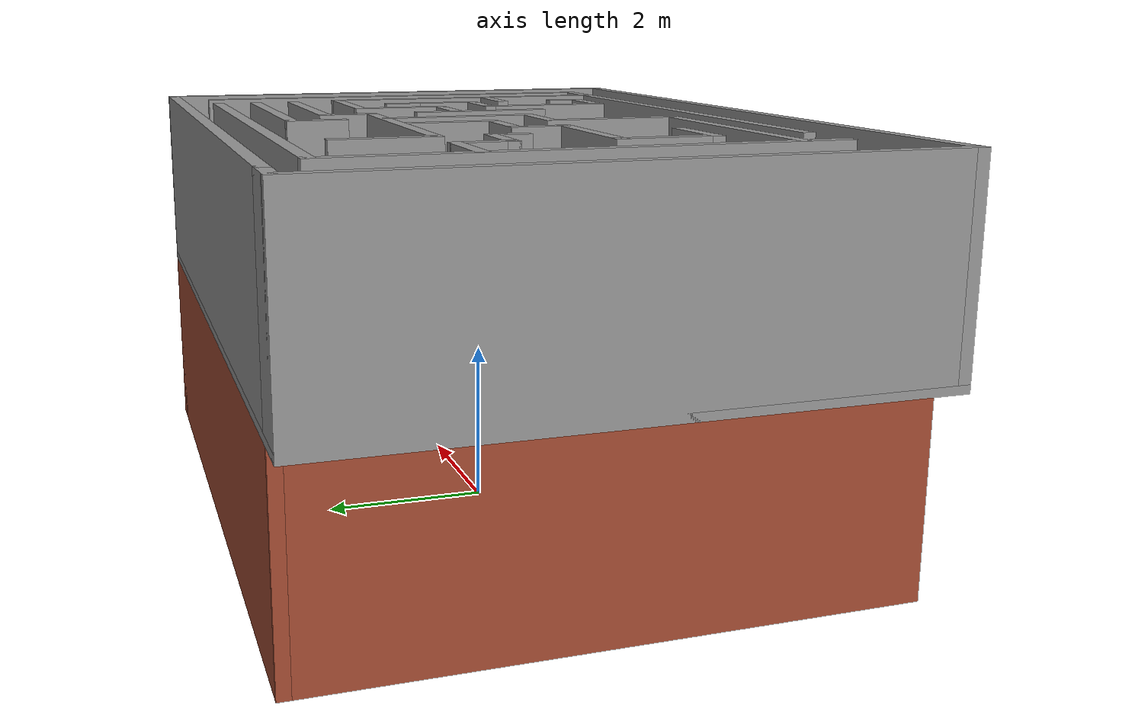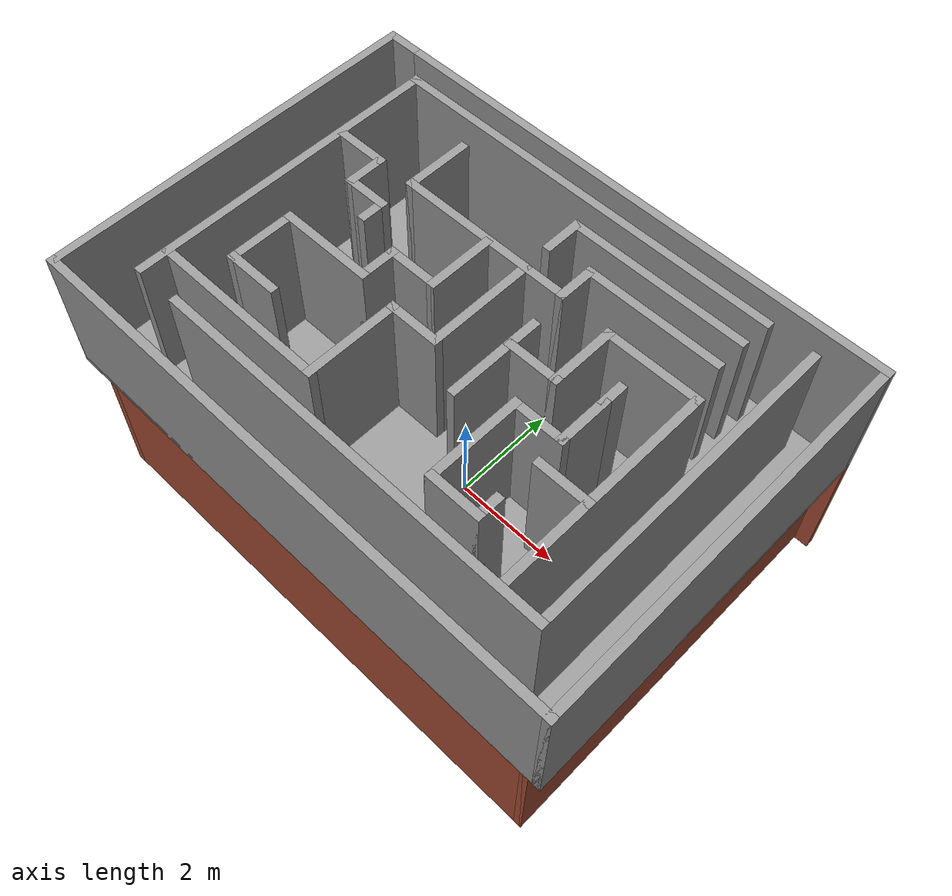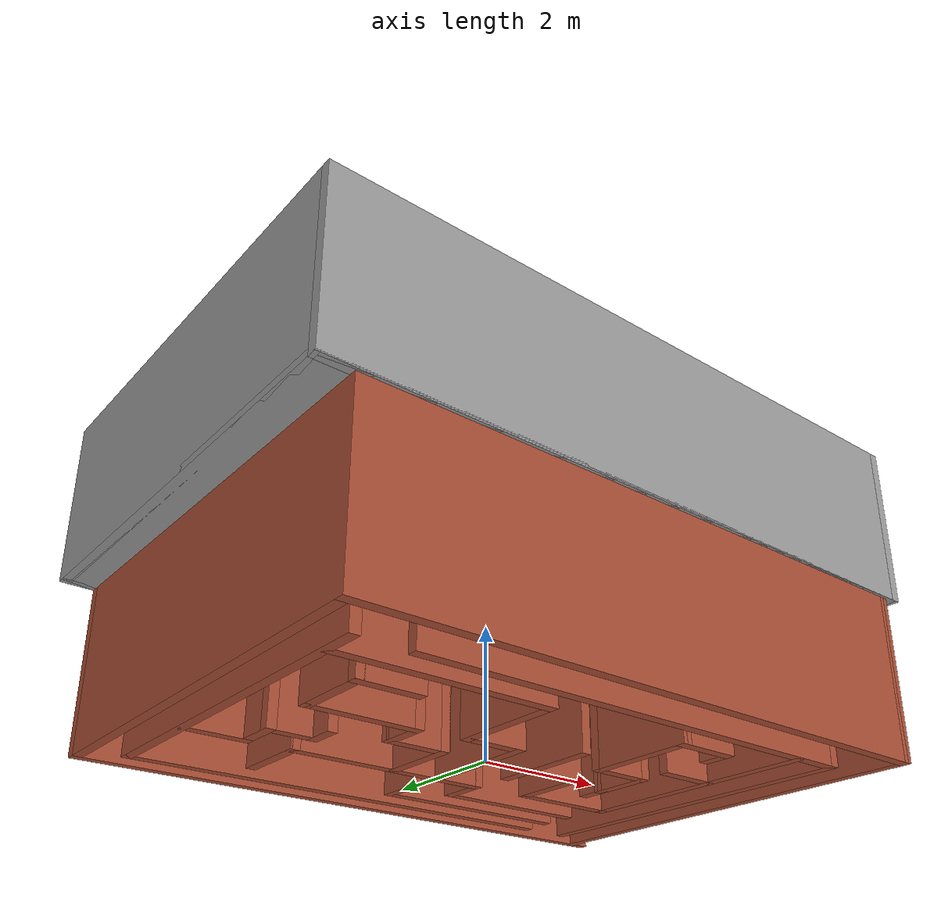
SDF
<?xml version='1.0'?>
<sdf version='1.6'>
  <model name='maze'>
    <pose frame=''>0.181 -0.096 0 0 -0 0</pose>
    <link name='Floor_0'>
      <collision name='Floor_0_Collision'>
        <geometry>
          <box>
            <size>10 7.04626 0.1</size>
          </box>
        </geometry>
        <pose frame=''>0 0 0.05 0 -0 0</pose>
      </collision>
      <visual name='Floor_0_Visual'>
        <pose frame=''>0 0 0.05 0 -0 0</pose>
        <geometry>
          <box>
            <size>10 7.04626 0.1</size>
          </box>
        </geometry>
        <material>
          <script>
            <uri>file://media/materials/scripts/gazebo.material</uri>
            <name>Gazebo/Grey</name>
          </script>
          <ambient>1 1 1 1</ambient>
        </material>
        <meta>
          <layer>1</layer>
        </meta>
      </visual>
      <pose frame=''>-0.250118 -0.02322 2.5 0 -0 0</pose>
    </link>
    <link name='Wall_0'>
      <collision name='Wall_0_Collision'>
        <geometry>
          <box>
            <size>5.75 0.15 2.5</size>
          </box>
        </geometry>
        <pose frame=''>0 0 1.25 0 -0 0</pose>
      </collision>
      <visual name='Wall_0_Visual'>
        <pose frame=''>0 0 1.25 0 -0 0</pose>
        <geometry>
          <box>
            <size>5.75 0.15 2.5</size>
          </box>
        </geometry>
        <material>
          <script>
            <uri>file://media/materials/scripts/gazebo.material</uri>
            <name>Gazebo/Bricks</name>
          </script>
          <ambient>1 1 1 1</ambient>
        </material>
        <meta>
          <layer>0</layer>
        </meta>
      </visual>
      <pose frame=''>-4.128 0.14 0 0 -0 1.5708</pose>
    </link>
    <link name='Wall_1'>
      <collision name='Wall_1_Collision'>
        <geometry>
          <box>
            <size>7.25 0.15 2.5</size>
          </box>
        </geometry>
        <pose frame=''>0 0 1.25 0 -0 0</pose>
      </collision>
      <visual name='Wall_1_Visual'>
        <pose frame=''>0 0 1.25 0 -0 0</pose>
        <geometry>
          <box>
            <size>7.25 0.15 2.5</size>
          </box>
        </geometry>
        <material>
          <script>
            <uri>file://media/materials/scripts/gazebo.material</uri>
            <name>Gazebo/Bricks</name>
          </script>
          <ambient>1 1 1 1</ambient>
        </material>
        <meta>
          <layer>0</layer>
        </meta>
      </visual>
      <pose frame=''>-0.578 2.94 0 0 -0 0</pose>
    </link>
    <link name='Wall_100'>
      <collision name='Wall_100_Collision'>
        <geometry>
          <box>
            <size>0.75 0.15 2.5</size>
          </box>
        </geometry>
        <pose frame=''>0 0 1.25 0 -0 0</pose>
      </collision>
      <visual name='Wall_100_Visual'>
        <pose frame=''>0 0 1.25 0 -0 0</pose>
        <geometry>
          <box>
            <size>0.75 0.15 2.5</size>
          </box>
        </geometry>
        <material>
          <script>
            <uri>file://media/materials/scripts/gazebo.material</uri>
            <name>Gazebo/Grey</name>
          </script>
          <ambient>1 1 1 1</ambient>
        </material>
        <meta>
          <layer>1</layer>
        </meta>
      </visual>
      <pose frame=''>-1.75019 -0.165166 2.5 0 -0 1.5708</pose>
    </link>
    <link name='Wall_101'>
      <collision name='Wall_101_Collision'>
        <geometry>
          <box>
            <size>1 0.15 2.5</size>
          </box>
        </geometry>
        <pose frame=''>0 0 1.25 0 -0 0</pose>
      </collision>
      <visual name='Wall_101_Visual'>
        <pose frame=''>0 0 1.25 0 -0 0</pose>
        <geometry>
          <box>
            <size>1 0.15 2.5</size>
          </box>
        </geometry>
        <material>
          <script>
            <uri>file://media/materials/scripts/gazebo.material</uri>
            <name>Gazebo/Grey</name>
          </script>
          <ambient>1 1 1 1</ambient>
        </material>
        <meta>
          <layer>1</layer>
        </meta>
      </visual>
      <pose frame=''>-1.32519 0.134834 2.5 0 -0 0</pose>
    </link>
    <link name='Wall_102'>
      <collision name='Wall_102_Collision'>
        <geometry>
          <box>
            <size>1.25 0.15 2.5</size>
          </box>
        </geometry>
        <pose frame=''>0 0 1.25 0 -0 0</pose>
      </collision>
      <visual name='Wall_102_Visual'>
        <pose frame=''>0 0 1.25 0 -0 0</pose>
        <geometry>
          <box>
            <size>1.25 0.15 2.5</size>
          </box>
        </geometry>
        <material>
          <script>
            <uri>file://media/materials/scripts/gazebo.material</uri>
            <name>Gazebo/Grey</name>
          </script>
          <ambient>1 1 1 1</ambient>
        </material>
        <meta>
          <layer>1</layer>
        </meta>
      </visual>
      <pose frame=''>-0.900192 0.684834 2.5 0 -0 1.5708</pose>
    </link>
    <link name='Wall_103'>
      <collision name='Wall_103_Collision'>
        <geometry>
          <box>
            <size>1.75 0.15 2.5</size>
          </box>
        </geometry>
        <pose frame=''>0 0 1.25 0 -0 0</pose>
      </collision>
      <visual name='Wall_103_Visual'>
        <pose frame=''>0 0 1.25 0 -0 0</pose>
        <geometry>
          <box>
            <size>1.75 0.15 2.5</size>
          </box>
        </geometry>
        <material>
          <script>
            <uri>file://media/materials/scripts/gazebo.material</uri>
            <name>Gazebo/Grey</name>
          </script>
          <ambient>1 1 1 1</ambient>
        </material>
        <meta>
          <layer>1</layer>
        </meta>
      </visual>
      <pose frame=''>0.63281 -0.190315 2.5 0 -0 -1.5708</pose>
    </link>
    <link name='Wall_104'>
      <collision name='Wall_104_Collision'>
        <geometry>
          <box>
            <size>1 0.15 2.5</size>
          </box>
        </geometry>
        <pose frame=''>0 0 1.25 0 -0 0</pose>
      </collision>
      <visual name='Wall_104_Visual'>
        <pose frame=''>0 0 1.25 0 -0 0</pose>
        <geometry>
          <box>
            <size>1 0.15 2.5</size>
          </box>
        </geometry>
        <material>
          <script>
            <uri>file://media/materials/scripts/gazebo.material</uri>
            <name>Gazebo/Grey</name>
          </script>
          <ambient>1 1 1 1</ambient>
        </material>
        <meta>
          <layer>1</layer>
        </meta>
      </visual>
      <pose frame=''>-3.6569 1.27887 2.5 0 -0 0</pose>
    </link>
    <link name='Wall_105'>
      <collision name='Wall_105_Collision'>
        <geometry>
          <box>
            <size>0.75 0.15 2.5</size>
          </box>
        </geometry>
        <pose frame=''>0 0 1.25 0 -0 0</pose>
      </collision>
      <visual name='Wall_105_Visual'>
        <pose frame=''>0 0 1.25 0 -0 0</pose>
        <geometry>
          <box>
            <size>0.75 0.15 2.5</size>
          </box>
        </geometry>
        <material>
          <script>
            <uri>file://media/materials/scripts/gazebo.material</uri>
            <name>Gazebo/Grey</name>
          </script>
          <ambient>1 1 1 1</ambient>
        </material>
        <meta>
          <layer>1</layer>
        </meta>
      </visual>
      <pose frame=''>-3.2319 0.97887 2.5 0 -0 -1.5708</pose>
    </link>
    <link name='Wall_106'>
      <collision name='Wall_106_Collision'>
        <geometry>
          <box>
            <size>0.826044 0.15 2.5</size>
          </box>
        </geometry>
        <pose frame=''>0 0 1.25 0 -0 0</pose>
      </collision>
      <visual name='Wall_106_Visual'>
        <pose frame=''>0 0 1.25 0 -0 0</pose>
        <geometry>
          <box>
            <size>0.826044 0.15 2.5</size>
          </box>
        </geometry>
        <material>
          <script>
            <uri>file://media/materials/scripts/gazebo.material</uri>
            <name>Gazebo/Grey</name>
          </script>
          <ambient>1 1 1 1</ambient>
        </material>
        <meta>
          <layer>1</layer>
        </meta>
      </visual>
      <pose frame=''>-2.89388 0.67887 2.5 0 -0 0</pose>
    </link>
    <link name='Wall_107'>
      <collision name='Wall_107_Collision'>
        <geometry>
          <box>
            <size>0.5 0.15 2.5</size>
          </box>
        </geometry>
        <pose frame=''>0 0 1.25 0 -0 0</pose>
      </collision>
      <visual name='Wall_107_Visual'>
        <pose frame=''>0 0 1.25 0 -0 0</pose>
        <geometry>
          <box>
            <size>0.5 0.15 2.5</size>
          </box>
        </geometry>
        <material>
          <script>
            <uri>file://media/materials/scripts/gazebo.material</uri>
            <name>Gazebo/Grey</name>
          </script>
          <ambient>1 1 1 1</ambient>
        </material>
        <meta>
          <layer>1</layer>
        </meta>
      </visual>
      <pose frame=''>-2.55586 0.488661 2.5 0 -0 -1.5708</pose>
    </link>
    <link name='Wall_108'>
      <collision name='Wall_108_Collision'>
        <geometry>
          <box>
            <size>0.484593 0.15 2.5</size>
          </box>
        </geometry>
        <pose frame=''>0 0 1.25 0 -0 0</pose>
      </collision>
      <visual name='Wall_108_Visual'>
        <pose frame=''>0 0 1.25 0 -0 0</pose>
        <geometry>
          <box>
            <size>0.484593 0.15 2.5</size>
          </box>
        </geometry>
        <material>
          <script>
            <uri>file://media/materials/scripts/gazebo.material</uri>
            <name>Gazebo/Grey</name>
          </script>
          <ambient>1 1 1 1</ambient>
        </material>
        <meta>
          <layer>1</layer>
        </meta>
      </visual>
      <pose frame=''>2.21452 0.472806 2.5 0 -0 -1.5708</pose>
    </link>
    <link name='Wall_109'>
      <collision name='Wall_109_Collision'>
        <geometry>
          <box>
            <size>9.5 0.15 2.5</size>
          </box>
        </geometry>
        <pose frame=''>0 0 1.25 0 -0 0</pose>
      </collision>
      <visual name='Wall_109_Visual'>
        <pose frame=''>0 0 1.25 0 -0 0</pose>
        <geometry>
          <box>
            <size>9.5 0.15 2.5</size>
          </box>
        </geometry>
        <material>
          <script>
            <uri>file://media/materials/scripts/gazebo.material</uri>
            <name>Gazebo/Grey</name>
          </script>
          <ambient>1 1 1 1</ambient>
        </material>
        <meta>
          <layer>1</layer>
        </meta>
      </visual>
      <pose frame=''>-0.000118 3.42491 2.5 0 -0 0</pose>
    </link>
    <link name='Wall_110'>
      <collision name='Wall_110_Collision'>
        <geometry>
          <box>
            <size>7.04626 0.15 2.5</size>
          </box>
        </geometry>
        <pose frame=''>0 0 1.25 0 -0 0</pose>
      </collision>
      <visual name='Wall_110_Visual'>
        <pose frame=''>0 0 1.25 0 -0 0</pose>
        <geometry>
          <box>
            <size>7.04626 0.15 2.5</size>
          </box>
        </geometry>
        <material>
          <script>
            <uri>file://media/materials/scripts/gazebo.material</uri>
            <name>Gazebo/Grey</name>
          </script>
          <ambient>1 1 1 1</ambient>
        </material>
        <meta>
          <layer>1</layer>
        </meta>
      </visual>
      <pose frame=''>-5.17512 -0.02322 2.5 0 -0 1.5708</pose>
    </link>
    <link name='Wall_111'>
      <collision name='Wall_111_Collision'>
        <geometry>
          <box>
            <size>0.65 0.15 2.5</size>
          </box>
        </geometry>
        <pose frame=''>0 0 1.25 0 -0 0</pose>
      </collision>
      <visual name='Wall_111_Visual'>
        <pose frame=''>0 0 1.25 0 -0 0</pose>
        <geometry>
          <box>
            <size>0.65 0.15 2.5</size>
          </box>
        </geometry>
        <material>
          <script>
            <uri>file://media/materials/scripts/gazebo.material</uri>
            <name>Gazebo/Grey</name>
          </script>
          <ambient>1 1 1 1</ambient>
        </material>
        <meta>
          <layer>1</layer>
        </meta>
      </visual>
      <pose frame=''>-4.92512 3.42491 2.5 0 -0 0</pose>
    </link>
    <link name='Wall_112'>
      <collision name='Wall_112_Collision'>
        <geometry>
          <box>
            <size>10 0.15 2.5</size>
          </box>
        </geometry>
        <pose frame=''>0 0 1.25 0 -0 0</pose>
      </collision>
      <visual name='Wall_112_Visual'>
        <pose frame=''>0 0 1.25 0 -0 0</pose>
        <geometry>
          <box>
            <size>10 0.15 2.5</size>
          </box>
        </geometry>
        <material>
          <script>
            <uri>file://media/materials/scripts/gazebo.material</uri>
            <name>Gazebo/Grey</name>
          </script>
          <ambient>1 1 1 1</ambient>
        </material>
        <meta>
          <layer>1</layer>
        </meta>
      </visual>
      <pose frame=''>-0.250118 -3.47135 2.5 0 -0 0</pose>
    </link>
    <link name='Wall_113'>
      <collision name='Wall_113_Collision'>
        <geometry>
          <box>
            <size>7.04626 0.15 2.5</size>
          </box>
        </geometry>
        <pose frame=''>0 0 1.25 0 -0 0</pose>
      </collision>
      <visual name='Wall_113_Visual'>
        <pose frame=''>0 0 1.25 0 -0 0</pose>
        <geometry>
          <box>
            <size>7.04626 0.15 2.5</size>
          </box>
        </geometry>
        <material>
          <script>
            <uri>file://media/materials/scripts/gazebo.material</uri>
            <name>Gazebo/Grey</name>
          </script>
          <ambient>1 1 1 1</ambient>
        </material>
        <meta>
          <layer>1</layer>
        </meta>
      </visual>
      <pose frame=''>4.67488 -0.02322 2.5 0 -0 1.5708</pose>
    </link>
    <link name='Wall_114'>
      <collision name='Wall_114_Collision'>
        <geometry>
          <box>
            <size>7 0.15 2.5</size>
          </box>
        </geometry>
        <pose frame=''>0 0 1.25 0 -0 0</pose>
      </collision>
      <visual name='Wall_114_Visual'>
        <pose frame=''>0 0 1.25 0 -0 0</pose>
        <geometry>
          <box>
            <size>7 0.15 2.5</size>
          </box>
        </geometry>
        <material>
          <script>
            <uri>file://media/materials/scripts/gazebo.material</uri>
            <name>Gazebo/Bricks</name>
          </script>
          <ambient>1 1 1 1</ambient>
        </material>
        <meta>
          <layer>0</layer>
        </meta>
      </visual>
      <pose frame=''>-4.675 -0 0 0 -0 -1.5708</pose>
    </link>
    <link name='Wall_115'>
      <collision name='Wall_115_Collision'>
        <geometry>
          <box>
            <size>9.25 0.15 2.5</size>
          </box>
        </geometry>
        <pose frame=''>0 0 1.25 0 -0 0</pose>
      </collision>
      <visual name='Wall_115_Visual'>
        <pose frame=''>0 0 1.25 0 -0 0</pose>
        <geometry>
          <box>
            <size>9.25 0.15 2.5</size>
          </box>
        </geometry>
        <material>
          <script>
            <uri>file://media/materials/scripts/gazebo.material</uri>
            <name>Gazebo/Bricks</name>
          </script>
          <ambient>1 1 1 1</ambient>
        </material>
        <meta>
          <layer>0</layer>
        </meta>
      </visual>
      <pose frame=''>-0.125 -3.425 0 0 -0 0</pose>
    </link>
    <link name='Wall_117'>
      <collision name='Wall_117_Collision'>
        <geometry>
          <box>
            <size>7 0.15 2.5</size>
          </box>
        </geometry>
        <pose frame=''>0 0 1.25 0 -0 0</pose>
      </collision>
      <visual name='Wall_117_Visual'>
        <pose frame=''>0 0 1.25 0 -0 0</pose>
        <geometry>
          <box>
            <size>7 0.15 2.5</size>
          </box>
        </geometry>
        <material>
          <script>
            <uri>file://media/materials/scripts/gazebo.material</uri>
            <name>Gazebo/Bricks</name>
          </script>
          <ambient>1 1 1 1</ambient>
        </material>
        <meta>
          <layer>0</layer>
        </meta>
      </visual>
      <pose frame=''>4.425 -0 0 0 -0 1.5708</pose>
    </link>
    <link name='Wall_12'>
      <collision name='Wall_12_Collision'>
        <geometry>
          <box>
            <size>1 0.15 2.5</size>
          </box>
        </geometry>
        <pose frame=''>0 0 1.25 0 -0 0</pose>
      </collision>
      <visual name='Wall_12_Visual'>
        <pose frame=''>0 0 1.25 0 -0 0</pose>
        <geometry>
          <box>
            <size>1 0.15 2.5</size>
          </box>
        </geometry>
        <material>
          <script>
            <uri>file://media/materials/scripts/gazebo.material</uri>
            <name>Gazebo/Bricks</name>
          </script>
          <ambient>1 1 1 1</ambient>
        </material>
        <meta>
          <layer>0</layer>
        </meta>
      </visual>
      <pose frame=''>1.073 0.123 0 0 -0 0</pose>
    </link>
    <link name='Wall_13'>
      <collision name='Wall_13_Collision'>
        <geometry>
          <box>
            <size>1.25 0.15 2.5</size>
          </box>
        </geometry>
        <pose frame=''>0 0 1.25 0 -0 0</pose>
      </collision>
      <visual name='Wall_13_Visual'>
        <pose frame=''>0 0 1.25 0 -0 0</pose>
        <geometry>
          <box>
            <size>1.25 0.15 2.5</size>
          </box>
        </geometry>
        <material>
          <script>
            <uri>file://media/materials/scripts/gazebo.material</uri>
            <name>Gazebo/Bricks</name>
          </script>
          <ambient>1 1 1 1</ambient>
        </material>
        <meta>
          <layer>0</layer>
        </meta>
      </visual>
      <pose frame=''>1.498 0.673 0 0 -0 1.5708</pose>
    </link>
    <link name='Wall_14'>
      <collision name='Wall_14_Collision'>
        <geometry>
          <box>
            <size>1.75 0.15 2.5</size>
          </box>
        </geometry>
        <pose frame=''>0 0 1.25 0 -0 0</pose>
      </collision>
      <visual name='Wall_14_Visual'>
        <pose frame=''>0 0 1.25 0 -0 0</pose>
        <geometry>
          <box>
            <size>1.75 0.15 2.5</size>
          </box>
        </geometry>
        <material>
          <script>
            <uri>file://media/materials/scripts/gazebo.material</uri>
            <name>Gazebo/Bricks</name>
          </script>
          <ambient>1 1 1 1</ambient>
        </material>
        <meta>
          <layer>0</layer>
        </meta>
      </visual>
      <pose frame=''>2.298 1.223 0 0 -0 0</pose>
    </link>
    <link name='Wall_15'>
      <collision name='Wall_15_Collision'>
        <geometry>
          <box>
            <size>4 0.15 2.5</size>
          </box>
        </geometry>
        <pose frame=''>0 0 1.25 0 -0 0</pose>
      </collision>
      <visual name='Wall_15_Visual'>
        <pose frame=''>0 0 1.25 0 -0 0</pose>
        <geometry>
          <box>
            <size>4 0.15 2.5</size>
          </box>
        </geometry>
        <material>
          <script>
            <uri>file://media/materials/scripts/gazebo.material</uri>
            <name>Gazebo/Bricks</name>
          </script>
          <ambient>1 1 1 1</ambient>
        </material>
        <meta>
          <layer>0</layer>
        </meta>
      </visual>
      <pose frame=''>3.098 -0.702 0 0 -0 -1.5708</pose>
    </link>
    <link name='Wall_19'>
      <collision name='Wall_19_Collision'>
        <geometry>
          <box>
            <size>2 0.15 2.5</size>
          </box>
        </geometry>
        <pose frame=''>0 0 1.25 0 -0 0</pose>
      </collision>
      <visual name='Wall_19_Visual'>
        <pose frame=''>0 0 1.25 0 -0 0</pose>
        <geometry>
          <box>
            <size>2 0.15 2.5</size>
          </box>
        </geometry>
        <material>
          <script>
            <uri>file://media/materials/scripts/gazebo.material</uri>
            <name>Gazebo/Bricks</name>
          </script>
          <ambient>1 1 1 1</ambient>
        </material>
        <meta>
          <layer>0</layer>
        </meta>
      </visual>
      <pose frame=''>-0.158045 0.35387 0 0 -0 -1.5708</pose>
    </link>
    <link name='Wall_20'>
      <collision name='Wall_20_Collision'>
        <geometry>
          <box>
            <size>1 0.15 2.5</size>
          </box>
        </geometry>
        <pose frame=''>0 0 1.25 0 -0 0</pose>
      </collision>
      <visual name='Wall_20_Visual'>
        <pose frame=''>0 0 1.25 0 -0 0</pose>
        <geometry>
          <box>
            <size>1 0.15 2.5</size>
          </box>
        </geometry>
        <material>
          <script>
            <uri>file://media/materials/scripts/gazebo.material</uri>
            <name>Gazebo/Bricks</name>
          </script>
          <ambient>1 1 1 1</ambient>
        </material>
        <meta>
          <layer>0</layer>
        </meta>
      </visual>
      <pose frame=''>-0.583045 -0.57113 0 0 -0 3.14159</pose>
    </link>
    <link name='Wall_21'>
      <collision name='Wall_21_Collision'>
        <geometry>
          <box>
            <size>1.75 0.15 2.5</size>
          </box>
        </geometry>
        <pose frame=''>0 0 1.25 0 -0 0</pose>
      </collision>
      <visual name='Wall_21_Visual'>
        <pose frame=''>0 0 1.25 0 -0 0</pose>
        <geometry>
          <box>
            <size>1.75 0.15 2.5</size>
          </box>
        </geometry>
        <material>
          <script>
            <uri>file://media/materials/scripts/gazebo.material</uri>
            <name>Gazebo/Bricks</name>
          </script>
          <ambient>1 1 1 1</ambient>
        </material>
        <meta>
          <layer>0</layer>
        </meta>
      </visual>
      <pose frame=''>-1.00805 -1.37113 0 0 -0 -1.5708</pose>
    </link>
    <link name='Wall_22'>
      <collision name='Wall_22_Collision'>
        <geometry>
          <box>
            <size>3.25 0.15 2.5</size>
          </box>
        </geometry>
        <pose frame=''>0 0 1.25 0 -0 0</pose>
      </collision>
      <visual name='Wall_22_Visual'>
        <pose frame=''>0 0 1.25 0 -0 0</pose>
        <geometry>
          <box>
            <size>3.25 0.15 2.5</size>
          </box>
        </geometry>
        <material>
          <script>
            <uri>file://media/materials/scripts/gazebo.material</uri>
            <name>Gazebo/Bricks</name>
          </script>
          <ambient>1 1 1 1</ambient>
        </material>
        <meta>
          <layer>0</layer>
        </meta>
      </visual>
      <pose frame=''>-2.55804 -2.17113 0 0 -0 3.14159</pose>
    </link>
    <link name='Wall_24'>
      <collision name='Wall_24_Collision'>
        <geometry>
          <box>
            <size>0.75 0.15 2.5</size>
          </box>
        </geometry>
        <pose frame=''>0 0 1.25 0 -0 0</pose>
      </collision>
      <visual name='Wall_24_Visual'>
        <pose frame=''>0 0 1.25 0 -0 0</pose>
        <geometry>
          <box>
            <size>0.75 0.15 2.5</size>
          </box>
        </geometry>
        <material>
          <script>
            <uri>file://media/materials/scripts/gazebo.material</uri>
            <name>Gazebo/Bricks</name>
          </script>
          <ambient>1 1 1 1</ambient>
        </material>
        <meta>
          <layer>0</layer>
        </meta>
      </visual>
      <pose frame=''>-0.173 2.126 0 0 -0 1.5708</pose>
    </link>
    <link name='Wall_25'>
      <collision name='Wall_25_Collision'>
        <geometry>
          <box>
            <size>3.25 0.15 2.5</size>
          </box>
        </geometry>
        <pose frame=''>0 0 1.25 0 -0 0</pose>
      </collision>
      <visual name='Wall_25_Visual'>
        <pose frame=''>0 0 1.25 0 -0 0</pose>
        <geometry>
          <box>
            <size>3.25 0.15 2.5</size>
          </box>
        </geometry>
        <material>
          <script>
            <uri>file://media/materials/scripts/gazebo.material</uri>
            <name>Gazebo/Bricks</name>
          </script>
          <ambient>1 1 1 1</ambient>
        </material>
        <meta>
          <layer>0</layer>
        </meta>
      </visual>
      <pose frame=''>1.377 2.426 0 0 -0 0</pose>
    </link>
    <link name='Wall_28'>
      <collision name='Wall_28_Collision'>
        <geometry>
          <box>
            <size>1 0.15 2.5</size>
          </box>
        </geometry>
        <pose frame=''>0 0 1.25 0 -0 0</pose>
      </collision>
      <visual name='Wall_28_Visual'>
        <pose frame=''>0 0 1.25 0 -0 0</pose>
        <geometry>
          <box>
            <size>1 0.15 2.5</size>
          </box>
        </geometry>
        <material>
          <script>
            <uri>file://media/materials/scripts/gazebo.material</uri>
            <name>Gazebo/Bricks</name>
          </script>
          <ambient>1 1 1 1</ambient>
        </material>
        <meta>
          <layer>0</layer>
        </meta>
      </visual>
      <pose frame=''>2.21476 -0.119245 0 0 -0 -1.57023</pose>
    </link>
    <link name='Wall_29'>
      <collision name='Wall_29_Collision'>
        <geometry>
          <box>
            <size>1 0.15 2.5</size>
          </box>
        </geometry>
        <pose frame=''>0 0 1.25 0 -0 0</pose>
      </collision>
      <visual name='Wall_29_Visual'>
        <pose frame=''>0 0 1.25 0 -0 0</pose>
        <geometry>
          <box>
            <size>1 0.15 2.5</size>
          </box>
        </geometry>
        <material>
          <script>
            <uri>file://media/materials/scripts/gazebo.material</uri>
            <name>Gazebo/Bricks</name>
          </script>
          <ambient>1 1 1 1</ambient>
        </material>
        <meta>
          <layer>0</layer>
        </meta>
      </visual>
      <pose frame=''>1.79 -0.544 0 0 -0 3.14159</pose>
    </link>
    <link name='Wall_3'>
      <collision name='Wall_3_Collision'>
        <geometry>
          <box>
            <size>7.25 0.15 2.5</size>
          </box>
        </geometry>
        <pose frame=''>0 0 1.25 0 -0 0</pose>
      </collision>
      <visual name='Wall_3_Visual'>
        <pose frame=''>0 0 1.25 0 -0 0</pose>
        <geometry>
          <box>
            <size>7.25 0.15 2.5</size>
          </box>
        </geometry>
        <material>
          <script>
            <uri>file://media/materials/scripts/gazebo.material</uri>
            <name>Gazebo/Bricks</name>
          </script>
          <ambient>1 1 1 1</ambient>
        </material>
        <meta>
          <layer>0</layer>
        </meta>
      </visual>
      <pose frame=''>0.244 -2.675 0 0 -0 0</pose>
    </link>
    <link name='Wall_30'>
      <collision name='Wall_30_Collision'>
        <geometry>
          <box>
            <size>1.75 0.15 2.5</size>
          </box>
        </geometry>
        <pose frame=''>0 0 1.25 0 -0 0</pose>
      </collision>
      <visual name='Wall_30_Visual'>
        <pose frame=''>0 0 1.25 0 -0 0</pose>
        <geometry>
          <box>
            <size>1.75 0.15 2.5</size>
          </box>
        </geometry>
        <material>
          <script>
            <uri>file://media/materials/scripts/gazebo.material</uri>
            <name>Gazebo/Bricks</name>
          </script>
          <ambient>1 1 1 1</ambient>
        </material>
        <meta>
          <layer>0</layer>
        </meta>
      </visual>
      <pose frame=''>1.365 -1.344 0 0 -0 -1.5708</pose>
    </link>
    <link name='Wall_31'>
      <collision name='Wall_31_Collision'>
        <geometry>
          <box>
            <size>1 0.15 2.5</size>
          </box>
        </geometry>
        <pose frame=''>0 0 1.25 0 -0 0</pose>
      </collision>
      <visual name='Wall_31_Visual'>
        <pose frame=''>0 0 1.25 0 -0 0</pose>
        <geometry>
          <box>
            <size>1 0.15 2.5</size>
          </box>
        </geometry>
        <material>
          <script>
            <uri>file://media/materials/scripts/gazebo.material</uri>
            <name>Gazebo/Bricks</name>
          </script>
          <ambient>1 1 1 1</ambient>
        </material>
        <meta>
          <layer>0</layer>
        </meta>
      </visual>
      <pose frame=''>1.79 -2.144 0 0 -0 0</pose>
    </link>
    <link name='Wall_32'>
      <collision name='Wall_32_Collision'>
        <geometry>
          <box>
            <size>0.5 0.15 2.5</size>
          </box>
        </geometry>
        <pose frame=''>0 0 1.25 0 -0 0</pose>
      </collision>
      <visual name='Wall_32_Visual'>
        <pose frame=''>0 0 1.25 0 -0 0</pose>
        <geometry>
          <box>
            <size>0.5 0.15 2.5</size>
          </box>
        </geometry>
        <material>
          <script>
            <uri>file://media/materials/scripts/gazebo.material</uri>
            <name>Gazebo/Bricks</name>
          </script>
          <ambient>1 1 1 1</ambient>
        </material>
        <meta>
          <layer>0</layer>
        </meta>
      </visual>
      <pose frame=''>2.215 -1.969 0 0 -0 1.5708</pose>
    </link>
    <link name='Wall_34'>
      <collision name='Wall_34_Collision'>
        <geometry>
          <box>
            <size>1 0.15 2.5</size>
          </box>
        </geometry>
        <pose frame=''>0 0 1.25 0 -0 0</pose>
      </collision>
      <visual name='Wall_34_Visual'>
        <pose frame=''>0 0 1.25 0 -0 0</pose>
        <geometry>
          <box>
            <size>1 0.15 2.5</size>
          </box>
        </geometry>
        <material>
          <script>
            <uri>file://media/materials/scripts/gazebo.material</uri>
            <name>Gazebo/Bricks</name>
          </script>
          <ambient>1 1 1 1</ambient>
        </material>
        <meta>
          <layer>0</layer>
        </meta>
      </visual>
      <pose frame=''>2.66994 -1.01765 0 0 -0 0</pose>
    </link>
    <link name='Wall_36'>
      <collision name='Wall_36_Collision'>
        <geometry>
          <box>
            <size>1 0.15 2.5</size>
          </box>
        </geometry>
        <pose frame=''>0 0 1.25 0 -0 0</pose>
      </collision>
      <visual name='Wall_36_Visual'>
        <pose frame=''>0 0 1.25 0 -0 0</pose>
        <geometry>
          <box>
            <size>1 0.15 2.5</size>
          </box>
        </geometry>
        <material>
          <script>
            <uri>file://media/materials/scripts/gazebo.material</uri>
            <name>Gazebo/Bricks</name>
          </script>
          <ambient>1 1 1 1</ambient>
        </material>
        <meta>
          <layer>0</layer>
        </meta>
      </visual>
      <pose frame=''>-2.925 -1.565 0 0 -0 3.14159</pose>
    </link>
    <link name='Wall_37'>
      <collision name='Wall_37_Collision'>
        <geometry>
          <box>
            <size>1.25 0.15 2.5</size>
          </box>
        </geometry>
        <pose frame=''>0 0 1.25 0 -0 0</pose>
      </collision>
      <visual name='Wall_37_Visual'>
        <pose frame=''>0 0 1.25 0 -0 0</pose>
        <geometry>
          <box>
            <size>1.25 0.15 2.5</size>
          </box>
        </geometry>
        <material>
          <script>
            <uri>file://media/materials/scripts/gazebo.material</uri>
            <name>Gazebo/Bricks</name>
          </script>
          <ambient>1 1 1 1</ambient>
        </material>
        <meta>
          <layer>0</layer>
        </meta>
      </visual>
      <pose frame=''>-3.35 -1.015 0 0 -0 1.5708</pose>
    </link>
    <link name='Wall_38'>
      <collision name='Wall_38_Collision'>
        <geometry>
          <box>
            <size>1.75 0.15 2.5</size>
          </box>
        </geometry>
        <pose frame=''>0 0 1.25 0 -0 0</pose>
      </collision>
      <visual name='Wall_38_Visual'>
        <pose frame=''>0 0 1.25 0 -0 0</pose>
        <geometry>
          <box>
            <size>1.75 0.15 2.5</size>
          </box>
        </geometry>
        <material>
          <script>
            <uri>file://media/materials/scripts/gazebo.material</uri>
            <name>Gazebo/Bricks</name>
          </script>
          <ambient>1 1 1 1</ambient>
        </material>
        <meta>
          <layer>0</layer>
        </meta>
      </visual>
      <pose frame=''>-2.55 -0.465 0 0 -0 0</pose>
    </link>
    <link name='Wall_39'>
      <collision name='Wall_39_Collision'>
        <geometry>
          <box>
            <size>0.75 0.15 2.5</size>
          </box>
        </geometry>
        <pose frame=''>0 0 1.25 0 -0 0</pose>
      </collision>
      <visual name='Wall_39_Visual'>
        <pose frame=''>0 0 1.25 0 -0 0</pose>
        <geometry>
          <box>
            <size>0.75 0.15 2.5</size>
          </box>
        </geometry>
        <material>
          <script>
            <uri>file://media/materials/scripts/gazebo.material</uri>
            <name>Gazebo/Bricks</name>
          </script>
          <ambient>1 1 1 1</ambient>
        </material>
        <meta>
          <layer>0</layer>
        </meta>
      </visual>
      <pose frame=''>-1.7501 -0.165083 0 0 -0 1.57112</pose>
    </link>
    <link name='Wall_4'>
      <collision name='Wall_4_Collision'>
        <geometry>
          <box>
            <size>5.75 0.15 2.5</size>
          </box>
        </geometry>
        <pose frame=''>0 0 1.25 0 -0 0</pose>
      </collision>
      <visual name='Wall_4_Visual'>
        <pose frame=''>0 0 1.25 0 -0 0</pose>
        <geometry>
          <box>
            <size>5.75 0.15 2.5</size>
          </box>
        </geometry>
        <material>
          <script>
            <uri>file://media/materials/scripts/gazebo.material</uri>
            <name>Gazebo/Bricks</name>
          </script>
          <ambient>1 1 1 1</ambient>
        </material>
        <meta>
          <layer>0</layer>
        </meta>
      </visual>
      <pose frame=''>3.79387 0.124797 0 0 -0 1.57084</pose>
    </link>
    <link name='Wall_40'>
      <collision name='Wall_40_Collision'>
        <geometry>
          <box>
            <size>1 0.15 2.5</size>
          </box>
        </geometry>
        <pose frame=''>0 0 1.25 0 -0 0</pose>
      </collision>
      <visual name='Wall_40_Visual'>
        <pose frame=''>0 0 1.25 0 -0 0</pose>
        <geometry>
          <box>
            <size>1 0.15 2.5</size>
          </box>
        </geometry>
        <material>
          <script>
            <uri>file://media/materials/scripts/gazebo.material</uri>
            <name>Gazebo/Bricks</name>
          </script>
          <ambient>1 1 1 1</ambient>
        </material>
        <meta>
          <layer>0</layer>
        </meta>
      </visual>
      <pose frame=''>-1.32519 0.134834 0 0 -0 0</pose>
    </link>
    <link name='Wall_41'>
      <collision name='Wall_41_Collision'>
        <geometry>
          <box>
            <size>1.25 0.15 2.5</size>
          </box>
        </geometry>
        <pose frame=''>0 0 1.25 0 -0 0</pose>
      </collision>
      <visual name='Wall_41_Visual'>
        <pose frame=''>0 0 1.25 0 -0 0</pose>
        <geometry>
          <box>
            <size>1.25 0.15 2.5</size>
          </box>
        </geometry>
        <material>
          <script>
            <uri>file://media/materials/scripts/gazebo.material</uri>
            <name>Gazebo/Bricks</name>
          </script>
          <ambient>1 1 1 1</ambient>
        </material>
        <meta>
          <layer>0</layer>
        </meta>
      </visual>
      <pose frame=''>-0.900192 0.684834 0 0 -0 1.5708</pose>
    </link>
    <link name='Wall_43'>
      <collision name='Wall_43_Collision'>
        <geometry>
          <box>
            <size>1.75 0.15 2.5</size>
          </box>
        </geometry>
        <pose frame=''>0 0 1.25 0 -0 0</pose>
      </collision>
      <visual name='Wall_43_Visual'>
        <pose frame=''>0 0 1.25 0 -0 0</pose>
        <geometry>
          <box>
            <size>1.75 0.15 2.5</size>
          </box>
        </geometry>
        <material>
          <script>
            <uri>file://media/materials/scripts/gazebo.material</uri>
            <name>Gazebo/Bricks</name>
          </script>
          <ambient>1 1 1 1</ambient>
        </material>
        <meta>
          <layer>0</layer>
        </meta>
      </visual>
      <pose frame=''>0.633 -0.19 0 0 -0 -1.5708</pose>
    </link>
    <link name='Wall_45'>
      <collision name='Wall_45_Collision'>
        <geometry>
          <box>
            <size>1 0.15 2.5</size>
          </box>
        </geometry>
        <pose frame=''>0 0 1.25 0 -0 0</pose>
      </collision>
      <visual name='Wall_45_Visual'>
        <pose frame=''>0 0 1.25 0 -0 0</pose>
        <geometry>
          <box>
            <size>1 0.15 2.5</size>
          </box>
        </geometry>
        <material>
          <script>
            <uri>file://media/materials/scripts/gazebo.material</uri>
            <name>Gazebo/Bricks</name>
          </script>
          <ambient>1 1 1 1</ambient>
        </material>
        <meta>
          <layer>0</layer>
        </meta>
      </visual>
      <pose frame=''>-3.657 1.279 0 0 -0 0</pose>
    </link>
    <link name='Wall_46'>
      <collision name='Wall_46_Collision'>
        <geometry>
          <box>
            <size>0.75 0.15 2.5</size>
          </box>
        </geometry>
        <pose frame=''>0 0 1.25 0 -0 0</pose>
      </collision>
      <visual name='Wall_46_Visual'>
        <pose frame=''>0 0 1.25 0 -0 0</pose>
        <geometry>
          <box>
            <size>0.75 0.15 2.5</size>
          </box>
        </geometry>
        <material>
          <script>
            <uri>file://media/materials/scripts/gazebo.material</uri>
            <name>Gazebo/Bricks</name>
          </script>
          <ambient>1 1 1 1</ambient>
        </material>
        <meta>
          <layer>0</layer>
        </meta>
      </visual>
      <pose frame=''>-3.232 0.979 0 0 -0 -1.5708</pose>
    </link>
    <link name='Wall_47'>
      <collision name='Wall_47_Collision'>
        <geometry>
          <box>
            <size>0.826728 0.15 2.5</size>
          </box>
        </geometry>
        <pose frame=''>0 0 1.25 0 -0 0</pose>
      </collision>
      <visual name='Wall_47_Visual'>
        <pose frame=''>0 0 1.25 0 -0 0</pose>
        <geometry>
          <box>
            <size>0.826728 0.15 2.5</size>
          </box>
        </geometry>
        <material>
          <script>
            <uri>file://media/materials/scripts/gazebo.material</uri>
            <name>Gazebo/Bricks</name>
          </script>
          <ambient>1 1 1 1</ambient>
        </material>
        <meta>
          <layer>0</layer>
        </meta>
      </visual>
      <pose frame=''>-2.894 0.679 0 0 -0 0</pose>
    </link>
    <link name='Wall_48'>
      <collision name='Wall_48_Collision'>
        <geometry>
          <box>
            <size>0.515339 0.15 2.5</size>
          </box>
        </geometry>
        <pose frame=''>0 0 1.25 0 -0 0</pose>
      </collision>
      <visual name='Wall_48_Visual'>
        <pose frame=''>0 0 1.25 0 -0 0</pose>
        <geometry>
          <box>
            <size>0.515339 0.15 2.5</size>
          </box>
        </geometry>
        <material>
          <script>
            <uri>file://media/materials/scripts/gazebo.material</uri>
            <name>Gazebo/Bricks</name>
          </script>
          <ambient>1 1 1 1</ambient>
        </material>
        <meta>
          <layer>0</layer>
        </meta>
      </visual>
      <pose frame=''>-2.556 0.4965 0 0 -0 -1.5708</pose>
    </link>
    <link name='Wall_50'>
      <collision name='Wall_50_Collision'>
        <geometry>
          <box>
            <size>0.484592 0.15 2.5</size>
          </box>
        </geometry>
        <pose frame=''>0 0 1.25 0 -0 0</pose>
      </collision>
      <visual name='Wall_50_Visual'>
        <pose frame=''>0 0 1.25 0 -0 0</pose>
        <geometry>
          <box>
            <size>0.484592 0.15 2.5</size>
          </box>
        </geometry>
        <material>
          <script>
            <uri>file://media/materials/scripts/gazebo.material</uri>
            <name>Gazebo/Bricks</name>
          </script>
          <ambient>1 1 1 1</ambient>
        </material>
        <meta>
          <layer>0</layer>
        </meta>
      </visual>
      <pose frame=''>2.21452 0.472806 0 0 -0 -1.5708</pose>
    </link>
    <link name='Wall_59'>
      <collision name='Wall_59_Collision'>
        <geometry>
          <box>
            <size>9.5 0.15 2.5</size>
          </box>
        </geometry>
        <pose frame=''>0 0 1.25 0 -0 0</pose>
      </collision>
      <visual name='Wall_59_Visual'>
        <pose frame=''>0 0 1.25 0 -0 0</pose>
        <geometry>
          <box>
            <size>9.5 0.15 2.5</size>
          </box>
        </geometry>
        <material>
          <script>
            <uri>file://media/materials/scripts/gazebo.material</uri>
            <name>Gazebo/Bricks</name>
          </script>
          <ambient>1 1 1 1</ambient>
        </material>
        <meta>
          <layer>0</layer>
        </meta>
      </visual>
      <pose frame=''>0 3.425 0 0 -0 0</pose>
    </link>
    <link name='Wall_6'>
      <collision name='Wall_6_Collision'>
        <geometry>
          <box>
            <size>1.25 0.15 2.5</size>
          </box>
        </geometry>
        <pose frame=''>0 0 1.25 0 -0 0</pose>
      </collision>
      <visual name='Wall_6_Visual'>
        <pose frame=''>0 0 1.25 0 -0 0</pose>
        <geometry>
          <box>
            <size>1.25 0.15 2.5</size>
          </box>
        </geometry>
        <material>
          <script>
            <uri>file://media/materials/scripts/gazebo.material</uri>
            <name>Gazebo/Bricks</name>
          </script>
          <ambient>1 1 1 1</ambient>
        </material>
        <meta>
          <layer>0</layer>
        </meta>
      </visual>
      <pose frame=''>-2.531 1.839 0 0 -0 -1.5708</pose>
    </link>
    <link name='Wall_7'>
      <collision name='Wall_7_Collision'>
        <geometry>
          <box>
            <size>3.25 0.15 2.5</size>
          </box>
        </geometry>
        <pose frame=''>0 0 1.25 0 -0 0</pose>
      </collision>
      <visual name='Wall_7_Visual'>
        <pose frame=''>0 0 1.25 0 -0 0</pose>
        <geometry>
          <box>
            <size>3.25 0.15 2.5</size>
          </box>
        </geometry>
        <material>
          <script>
            <uri>file://media/materials/scripts/gazebo.material</uri>
            <name>Gazebo/Bricks</name>
          </script>
          <ambient>1 1 1 1</ambient>
        </material>
        <meta>
          <layer>0</layer>
        </meta>
      </visual>
      <pose frame=''>-0.981 1.289 0 0 -0 0</pose>
    </link>
    <link name='Wall_73'>
      <collision name='Wall_73_Collision'>
        <geometry>
          <box>
            <size>5.75 0.15 2.5</size>
          </box>
        </geometry>
        <pose frame=''>0 0 1.25 0 -0 0</pose>
      </collision>
      <visual name='Wall_73_Visual'>
        <pose frame=''>0 0 1.25 0 -0 0</pose>
        <geometry>
          <box>
            <size>5.75 0.15 2.5</size>
          </box>
        </geometry>
        <material>
          <script>
            <uri>file://media/materials/scripts/gazebo.material</uri>
            <name>Gazebo/Grey</name>
          </script>
          <ambient>1 1 1 1</ambient>
        </material>
        <meta>
          <layer>1</layer>
        </meta>
      </visual>
      <pose frame=''>-4.12753 0.139804 2.5 0 -0 1.5708</pose>
    </link>
    <link name='Wall_74'>
      <collision name='Wall_74_Collision'>
        <geometry>
          <box>
            <size>7.25 0.15 2.5</size>
          </box>
        </geometry>
        <pose frame=''>0 0 1.25 0 -0 0</pose>
      </collision>
      <visual name='Wall_74_Visual'>
        <pose frame=''>0 0 1.25 0 -0 0</pose>
        <geometry>
          <box>
            <size>7.25 0.15 2.5</size>
          </box>
        </geometry>
        <material>
          <script>
            <uri>file://media/materials/scripts/gazebo.material</uri>
            <name>Gazebo/Grey</name>
          </script>
          <ambient>1 1 1 1</ambient>
        </material>
        <meta>
          <layer>1</layer>
        </meta>
      </visual>
      <pose frame=''>-0.577529 2.9398 2.5 0 -0 0</pose>
    </link>
    <link name='Wall_75'>
      <collision name='Wall_75_Collision'>
        <geometry>
          <box>
            <size>7.25 0.15 2.5</size>
          </box>
        </geometry>
        <pose frame=''>0 0 1.25 0 -0 0</pose>
      </collision>
      <visual name='Wall_75_Visual'>
        <pose frame=''>0 0 1.25 0 -0 0</pose>
        <geometry>
          <box>
            <size>7.25 0.15 2.5</size>
          </box>
        </geometry>
        <material>
          <script>
            <uri>file://media/materials/scripts/gazebo.material</uri>
            <name>Gazebo/Grey</name>
          </script>
          <ambient>1 1 1 1</ambient>
        </material>
        <meta>
          <layer>1</layer>
        </meta>
      </visual>
      <pose frame=''>0.243744 -2.67541 2.5 0 -0 0</pose>
    </link>
    <link name='Wall_76'>
      <collision name='Wall_76_Collision'>
        <geometry>
          <box>
            <size>5.75 0.15 2.5</size>
          </box>
        </geometry>
        <pose frame=''>0 0 1.25 0 -0 0</pose>
      </collision>
      <visual name='Wall_76_Visual'>
        <pose frame=''>0 0 1.25 0 -0 0</pose>
        <geometry>
          <box>
            <size>5.75 0.15 2.5</size>
          </box>
        </geometry>
        <material>
          <script>
            <uri>file://media/materials/scripts/gazebo.material</uri>
            <name>Gazebo/Grey</name>
          </script>
          <ambient>1 1 1 1</ambient>
        </material>
        <meta>
          <layer>1</layer>
        </meta>
      </visual>
      <pose frame=''>3.79374 0.124595 2.5 0 -0 1.5708</pose>
    </link>
    <link name='Wall_77'>
      <collision name='Wall_77_Collision'>
        <geometry>
          <box>
            <size>1.25 0.15 2.5</size>
          </box>
        </geometry>
        <pose frame=''>0 0 1.25 0 -0 0</pose>
      </collision>
      <visual name='Wall_77_Visual'>
        <pose frame=''>0 0 1.25 0 -0 0</pose>
        <geometry>
          <box>
            <size>1.25 0.15 2.5</size>
          </box>
        </geometry>
        <material>
          <script>
            <uri>file://media/materials/scripts/gazebo.material</uri>
            <name>Gazebo/Grey</name>
          </script>
          <ambient>1 1 1 1</ambient>
        </material>
        <meta>
          <layer>1</layer>
        </meta>
      </visual>
      <pose frame=''>-2.53061 1.83911 2.5 0 -0 -1.5708</pose>
    </link>
    <link name='Wall_78'>
      <collision name='Wall_78_Collision'>
        <geometry>
          <box>
            <size>3.25 0.15 2.5</size>
          </box>
        </geometry>
        <pose frame=''>0 0 1.25 0 -0 0</pose>
      </collision>
      <visual name='Wall_78_Visual'>
        <pose frame=''>0 0 1.25 0 -0 0</pose>
        <geometry>
          <box>
            <size>3.25 0.15 2.5</size>
          </box>
        </geometry>
        <material>
          <script>
            <uri>file://media/materials/scripts/gazebo.material</uri>
            <name>Gazebo/Grey</name>
          </script>
          <ambient>1 1 1 1</ambient>
        </material>
        <meta>
          <layer>1</layer>
        </meta>
      </visual>
      <pose frame=''>-0.98061 1.28911 2.5 0 -0 0</pose>
    </link>
    <link name='Wall_79'>
      <collision name='Wall_79_Collision'>
        <geometry>
          <box>
            <size>0.75 0.15 2.5</size>
          </box>
        </geometry>
        <pose frame=''>0 0 1.25 0 -0 0</pose>
      </collision>
      <visual name='Wall_79_Visual'>
        <pose frame=''>0 0 1.25 0 -0 0</pose>
        <geometry>
          <box>
            <size>0.75 0.15 2.5</size>
          </box>
        </geometry>
        <material>
          <script>
            <uri>file://media/materials/scripts/gazebo.material</uri>
            <name>Gazebo/Grey</name>
          </script>
          <ambient>1 1 1 1</ambient>
        </material>
        <meta>
          <layer>1</layer>
        </meta>
      </visual>
      <pose frame=''>0.56939 1.58911 2.5 0 -0 1.5708</pose>
    </link>
    <link name='Wall_8'>
      <collision name='Wall_8_Collision'>
        <geometry>
          <box>
            <size>0.75 0.15 2.5</size>
          </box>
        </geometry>
        <pose frame=''>0 0 1.25 0 -0 0</pose>
      </collision>
      <visual name='Wall_8_Visual'>
        <pose frame=''>0 0 1.25 0 -0 0</pose>
        <geometry>
          <box>
            <size>0.75 0.15 2.5</size>
          </box>
        </geometry>
        <material>
          <script>
            <uri>file://media/materials/scripts/gazebo.material</uri>
            <name>Gazebo/Bricks</name>
          </script>
          <ambient>1 1 1 1</ambient>
        </material>
        <meta>
          <layer>0</layer>
        </meta>
      </visual>
      <pose frame=''>0.569 1.589 0 0 -0 1.5708</pose>
    </link>
    <link name='Wall_80'>
      <collision name='Wall_80_Collision'>
        <geometry>
          <box>
            <size>2.5 0.15 2.5</size>
          </box>
        </geometry>
        <pose frame=''>0 0 1.25 0 -0 0</pose>
      </collision>
      <visual name='Wall_80_Visual'>
        <pose frame=''>0 0 1.25 0 -0 0</pose>
        <geometry>
          <box>
            <size>2.5 0.15 2.5</size>
          </box>
        </geometry>
        <material>
          <script>
            <uri>file://media/materials/scripts/gazebo.material</uri>
            <name>Gazebo/Grey</name>
          </script>
          <ambient>1 1 1 1</ambient>
        </material>
        <meta>
          <layer>1</layer>
        </meta>
      </visual>
      <pose frame=''>1.74439 1.88911 2.5 0 -0 0</pose>
    </link>
    <link name='Wall_81'>
      <collision name='Wall_81_Collision'>
        <geometry>
          <box>
            <size>1 0.15 2.5</size>
          </box>
        </geometry>
        <pose frame=''>0 0 1.25 0 -0 0</pose>
      </collision>
      <visual name='Wall_81_Visual'>
        <pose frame=''>0 0 1.25 0 -0 0</pose>
        <geometry>
          <box>
            <size>1 0.15 2.5</size>
          </box>
        </geometry>
        <material>
          <script>
            <uri>file://media/materials/scripts/gazebo.material</uri>
            <name>Gazebo/Grey</name>
          </script>
          <ambient>1 1 1 1</ambient>
        </material>
        <meta>
          <layer>1</layer>
        </meta>
      </visual>
      <pose frame=''>1.07302 0.123005 2.5 0 -0 0</pose>
    </link>
    <link name='Wall_82'>
      <collision name='Wall_82_Collision'>
        <geometry>
          <box>
            <size>1.25 0.15 2.5</size>
          </box>
        </geometry>
        <pose frame=''>0 0 1.25 0 -0 0</pose>
      </collision>
      <visual name='Wall_82_Visual'>
        <pose frame=''>0 0 1.25 0 -0 0</pose>
        <geometry>
          <box>
            <size>1.25 0.15 2.5</size>
          </box>
        </geometry>
        <material>
          <script>
            <uri>file://media/materials/scripts/gazebo.material</uri>
            <name>Gazebo/Grey</name>
          </script>
          <ambient>1 1 1 1</ambient>
        </material>
        <meta>
          <layer>1</layer>
        </meta>
      </visual>
      <pose frame=''>1.49802 0.673005 2.5 0 -0 1.5708</pose>
    </link>
    <link name='Wall_83'>
      <collision name='Wall_83_Collision'>
        <geometry>
          <box>
            <size>1.75 0.15 2.5</size>
          </box>
        </geometry>
        <pose frame=''>0 0 1.25 0 -0 0</pose>
      </collision>
      <visual name='Wall_83_Visual'>
        <pose frame=''>0 0 1.25 0 -0 0</pose>
        <geometry>
          <box>
            <size>1.75 0.15 2.5</size>
          </box>
        </geometry>
        <material>
          <script>
            <uri>file://media/materials/scripts/gazebo.material</uri>
            <name>Gazebo/Grey</name>
          </script>
          <ambient>1 1 1 1</ambient>
        </material>
        <meta>
          <layer>1</layer>
        </meta>
      </visual>
      <pose frame=''>2.29802 1.223 2.5 0 -0 0</pose>
    </link>
    <link name='Wall_84'>
      <collision name='Wall_84_Collision'>
        <geometry>
          <box>
            <size>4 0.15 2.5</size>
          </box>
        </geometry>
        <pose frame=''>0 0 1.25 0 -0 0</pose>
      </collision>
      <visual name='Wall_84_Visual'>
        <pose frame=''>0 0 1.25 0 -0 0</pose>
        <geometry>
          <box>
            <size>4 0.15 2.5</size>
          </box>
        </geometry>
        <material>
          <script>
            <uri>file://media/materials/scripts/gazebo.material</uri>
            <name>Gazebo/Grey</name>
          </script>
          <ambient>1 1 1 1</ambient>
        </material>
        <meta>
          <layer>1</layer>
        </meta>
      </visual>
      <pose frame=''>3.09802 -0.701995 2.5 0 -0 -1.5708</pose>
    </link>
    <link name='Wall_85'>
      <collision name='Wall_85_Collision'>
        <geometry>
          <box>
            <size>2 0.15 2.5</size>
          </box>
        </geometry>
        <pose frame=''>0 0 1.25 0 -0 0</pose>
      </collision>
      <visual name='Wall_85_Visual'>
        <pose frame=''>0 0 1.25 0 -0 0</pose>
        <geometry>
          <box>
            <size>2 0.15 2.5</size>
          </box>
        </geometry>
        <material>
          <script>
            <uri>file://media/materials/scripts/gazebo.material</uri>
            <name>Gazebo/Grey</name>
          </script>
          <ambient>1 1 1 1</ambient>
        </material>
        <meta>
          <layer>1</layer>
        </meta>
      </visual>
      <pose frame=''>-0.158045 0.35387 2.5 0 -0 -1.5708</pose>
    </link>
    <link name='Wall_86'>
      <collision name='Wall_86_Collision'>
        <geometry>
          <box>
            <size>1 0.15 2.5</size>
          </box>
        </geometry>
        <pose frame=''>0 0 1.25 0 -0 0</pose>
      </collision>
      <visual name='Wall_86_Visual'>
        <pose frame=''>0 0 1.25 0 -0 0</pose>
        <geometry>
          <box>
            <size>1 0.15 2.5</size>
          </box>
        </geometry>
        <material>
          <script>
            <uri>file://media/materials/scripts/gazebo.material</uri>
            <name>Gazebo/Grey</name>
          </script>
          <ambient>1 1 1 1</ambient>
        </material>
        <meta>
          <layer>1</layer>
        </meta>
      </visual>
      <pose frame=''>-0.583045 -0.57113 2.5 0 -0 3.14159</pose>
    </link>
    <link name='Wall_87'>
      <collision name='Wall_87_Collision'>
        <geometry>
          <box>
            <size>1.75 0.15 2.5</size>
          </box>
        </geometry>
        <pose frame=''>0 0 1.25 0 -0 0</pose>
      </collision>
      <visual name='Wall_87_Visual'>
        <pose frame=''>0 0 1.25 0 -0 0</pose>
        <geometry>
          <box>
            <size>1.75 0.15 2.5</size>
          </box>
        </geometry>
        <material>
          <script>
            <uri>file://media/materials/scripts/gazebo.material</uri>
            <name>Gazebo/Grey</name>
          </script>
          <ambient>1 1 1 1</ambient>
        </material>
        <meta>
          <layer>1</layer>
        </meta>
      </visual>
      <pose frame=''>-1.00805 -1.37113 2.5 0 -0 -1.5708</pose>
    </link>
    <link name='Wall_88'>
      <collision name='Wall_88_Collision'>
        <geometry>
          <box>
            <size>3.25 0.15 2.5</size>
          </box>
        </geometry>
        <pose frame=''>0 0 1.25 0 -0 0</pose>
      </collision>
      <visual name='Wall_88_Visual'>
        <pose frame=''>0 0 1.25 0 -0 0</pose>
        <geometry>
          <box>
            <size>3.25 0.15 2.5</size>
          </box>
        </geometry>
        <material>
          <script>
            <uri>file://media/materials/scripts/gazebo.material</uri>
            <name>Gazebo/Grey</name>
          </script>
          <ambient>1 1 1 1</ambient>
        </material>
        <meta>
          <layer>1</layer>
        </meta>
      </visual>
      <pose frame=''>-2.55804 -2.17113 2.5 0 -0 3.14159</pose>
    </link>
    <link name='Wall_89'>
      <collision name='Wall_89_Collision'>
        <geometry>
          <box>
            <size>0.75 0.15 2.5</size>
          </box>
        </geometry>
        <pose frame=''>0 0 1.25 0 -0 0</pose>
      </collision>
      <visual name='Wall_89_Visual'>
        <pose frame=''>0 0 1.25 0 -0 0</pose>
        <geometry>
          <box>
            <size>0.75 0.15 2.5</size>
          </box>
        </geometry>
        <material>
          <script>
            <uri>file://media/materials/scripts/gazebo.material</uri>
            <name>Gazebo/Grey</name>
          </script>
          <ambient>1 1 1 1</ambient>
        </material>
        <meta>
          <layer>1</layer>
        </meta>
      </visual>
      <pose frame=''>-0.173254 2.12638 2.5 0 -0 1.5708</pose>
    </link>
    <link name='Wall_9'>
      <collision name='Wall_9_Collision'>
        <geometry>
          <box>
            <size>2.5 0.15 2.5</size>
          </box>
        </geometry>
        <pose frame=''>0 0 1.25 0 -0 0</pose>
      </collision>
      <visual name='Wall_9_Visual'>
        <pose frame=''>0 0 1.25 0 -0 0</pose>
        <geometry>
          <box>
            <size>2.5 0.15 2.5</size>
          </box>
        </geometry>
        <material>
          <script>
            <uri>file://media/materials/scripts/gazebo.material</uri>
            <name>Gazebo/Bricks</name>
          </script>
          <ambient>1 1 1 1</ambient>
        </material>
        <meta>
          <layer>0</layer>
        </meta>
      </visual>
      <pose frame=''>1.744 1.889 0 0 -0 0</pose>
    </link>
    <link name='Wall_90'>
      <collision name='Wall_90_Collision'>
        <geometry>
          <box>
            <size>3.25 0.15 2.5</size>
          </box>
        </geometry>
        <pose frame=''>0 0 1.25 0 -0 0</pose>
      </collision>
      <visual name='Wall_90_Visual'>
        <pose frame=''>0 0 1.25 0 -0 0</pose>
        <geometry>
          <box>
            <size>3.25 0.15 2.5</size>
          </box>
        </geometry>
        <material>
          <script>
            <uri>file://media/materials/scripts/gazebo.material</uri>
            <name>Gazebo/Grey</name>
          </script>
          <ambient>1 1 1 1</ambient>
        </material>
        <meta>
          <layer>1</layer>
        </meta>
      </visual>
      <pose frame=''>1.37675 2.42638 2.5 0 -0 0</pose>
    </link>
    <link name='Wall_91'>
      <collision name='Wall_91_Collision'>
        <geometry>
          <box>
            <size>1 0.15 2.5</size>
          </box>
        </geometry>
        <pose frame=''>0 0 1.25 0 -0 0</pose>
      </collision>
      <visual name='Wall_91_Visual'>
        <pose frame=''>0 0 1.25 0 -0 0</pose>
        <geometry>
          <box>
            <size>1 0.15 2.5</size>
          </box>
        </geometry>
        <material>
          <script>
            <uri>file://media/materials/scripts/gazebo.material</uri>
            <name>Gazebo/Grey</name>
          </script>
          <ambient>1 1 1 1</ambient>
        </material>
        <meta>
          <layer>1</layer>
        </meta>
      </visual>
      <pose frame=''>2.21452 -0.11949 2.5 0 -0 -1.5708</pose>
    </link>
    <link name='Wall_92'>
      <collision name='Wall_92_Collision'>
        <geometry>
          <box>
            <size>1 0.15 2.5</size>
          </box>
        </geometry>
        <pose frame=''>0 0 1.25 0 -0 0</pose>
      </collision>
      <visual name='Wall_92_Visual'>
        <pose frame=''>0 0 1.25 0 -0 0</pose>
        <geometry>
          <box>
            <size>1 0.15 2.5</size>
          </box>
        </geometry>
        <material>
          <script>
            <uri>file://media/materials/scripts/gazebo.material</uri>
            <name>Gazebo/Grey</name>
          </script>
          <ambient>1 1 1 1</ambient>
        </material>
        <meta>
          <layer>1</layer>
        </meta>
      </visual>
      <pose frame=''>1.78952 -0.54449 2.5 0 -0 3.14159</pose>
    </link>
    <link name='Wall_93'>
      <collision name='Wall_93_Collision'>
        <geometry>
          <box>
            <size>1.75 0.15 2.5</size>
          </box>
        </geometry>
        <pose frame=''>0 0 1.25 0 -0 0</pose>
      </collision>
      <visual name='Wall_93_Visual'>
        <pose frame=''>0 0 1.25 0 -0 0</pose>
        <geometry>
          <box>
            <size>1.75 0.15 2.5</size>
          </box>
        </geometry>
        <material>
          <script>
            <uri>file://media/materials/scripts/gazebo.material</uri>
            <name>Gazebo/Grey</name>
          </script>
          <ambient>1 1 1 1</ambient>
        </material>
        <meta>
          <layer>1</layer>
        </meta>
      </visual>
      <pose frame=''>1.36452 -1.34449 2.5 0 -0 -1.5708</pose>
    </link>
    <link name='Wall_94'>
      <collision name='Wall_94_Collision'>
        <geometry>
          <box>
            <size>1 0.15 2.5</size>
          </box>
        </geometry>
        <pose frame=''>0 0 1.25 0 -0 0</pose>
      </collision>
      <visual name='Wall_94_Visual'>
        <pose frame=''>0 0 1.25 0 -0 0</pose>
        <geometry>
          <box>
            <size>1 0.15 2.5</size>
          </box>
        </geometry>
        <material>
          <script>
            <uri>file://media/materials/scripts/gazebo.material</uri>
            <name>Gazebo/Grey</name>
          </script>
          <ambient>1 1 1 1</ambient>
        </material>
        <meta>
          <layer>1</layer>
        </meta>
      </visual>
      <pose frame=''>1.78952 -2.14449 2.5 0 -0 0</pose>
    </link>
    <link name='Wall_95'>
      <collision name='Wall_95_Collision'>
        <geometry>
          <box>
            <size>0.5 0.15 2.5</size>
          </box>
        </geometry>
        <pose frame=''>0 0 1.25 0 -0 0</pose>
      </collision>
      <visual name='Wall_95_Visual'>
        <pose frame=''>0 0 1.25 0 -0 0</pose>
        <geometry>
          <box>
            <size>0.5 0.15 2.5</size>
          </box>
        </geometry>
        <material>
          <script>
            <uri>file://media/materials/scripts/gazebo.material</uri>
            <name>Gazebo/Grey</name>
          </script>
          <ambient>1 1 1 1</ambient>
        </material>
        <meta>
          <layer>1</layer>
        </meta>
      </visual>
      <pose frame=''>2.21452 -1.96949 2.5 0 -0 1.5708</pose>
    </link>
    <link name='Wall_96'>
      <collision name='Wall_96_Collision'>
        <geometry>
          <box>
            <size>1 0.15 2.5</size>
          </box>
        </geometry>
        <pose frame=''>0 0 1.25 0 -0 0</pose>
      </collision>
      <visual name='Wall_96_Visual'>
        <pose frame=''>0 0 1.25 0 -0 0</pose>
        <geometry>
          <box>
            <size>1 0.15 2.5</size>
          </box>
        </geometry>
        <material>
          <script>
            <uri>file://media/materials/scripts/gazebo.material</uri>
            <name>Gazebo/Grey</name>
          </script>
          <ambient>1 1 1 1</ambient>
        </material>
        <meta>
          <layer>1</layer>
        </meta>
      </visual>
      <pose frame=''>2.66994 -1.01765 2.5 0 -0 0</pose>
    </link>
    <link name='Wall_97'>
      <collision name='Wall_97_Collision'>
        <geometry>
          <box>
            <size>1 0.15 2.5</size>
          </box>
        </geometry>
        <pose frame=''>0 0 1.25 0 -0 0</pose>
      </collision>
      <visual name='Wall_97_Visual'>
        <pose frame=''>0 0 1.25 0 -0 0</pose>
        <geometry>
          <box>
            <size>1 0.15 2.5</size>
          </box>
        </geometry>
        <material>
          <script>
            <uri>file://media/materials/scripts/gazebo.material</uri>
            <name>Gazebo/Grey</name>
          </script>
          <ambient>1 1 1 1</ambient>
        </material>
        <meta>
          <layer>1</layer>
        </meta>
      </visual>
      <pose frame=''>-2.92519 -1.56517 2.5 0 -0 3.14159</pose>
    </link>
    <link name='Wall_98'>
      <collision name='Wall_98_Collision'>
        <geometry>
          <box>
            <size>1.25 0.15 2.5</size>
          </box>
        </geometry>
        <pose frame=''>0 0 1.25 0 -0 0</pose>
      </collision>
      <visual name='Wall_98_Visual'>
        <pose frame=''>0 0 1.25 0 -0 0</pose>
        <geometry>
          <box>
            <size>1.25 0.15 2.5</size>
          </box>
        </geometry>
        <material>
          <script>
            <uri>file://media/materials/scripts/gazebo.material</uri>
            <name>Gazebo/Grey</name>
          </script>
          <ambient>1 1 1 1</ambient>
        </material>
        <meta>
          <layer>1</layer>
        </meta>
      </visual>
      <pose frame=''>-3.35019 -1.01517 2.5 0 -0 1.5708</pose>
    </link>
    <link name='Wall_99'>
      <collision name='Wall_99_Collision'>
        <geometry>
          <box>
            <size>1.75 0.15 2.5</size>
          </box>
        </geometry>
        <pose frame=''>0 0 1.25 0 -0 0</pose>
      </collision>
      <visual name='Wall_99_Visual'>
        <pose frame=''>0 0 1.25 0 -0 0</pose>
        <geometry>
          <box>
            <size>1.75 0.15 2.5</size>
          </box>
        </geometry>
        <material>
          <script>
            <uri>file://media/materials/scripts/gazebo.material</uri>
            <name>Gazebo/Grey</name>
          </script>
          <ambient>1 1 1 1</ambient>
        </material>
        <meta>
          <layer>1</layer>
        </meta>
      </visual>
      <pose frame=''>-2.55019 -0.465166 2.5 0 -0 0</pose>
    </link>
    <static>1</static>
  </model>
</sdf>
